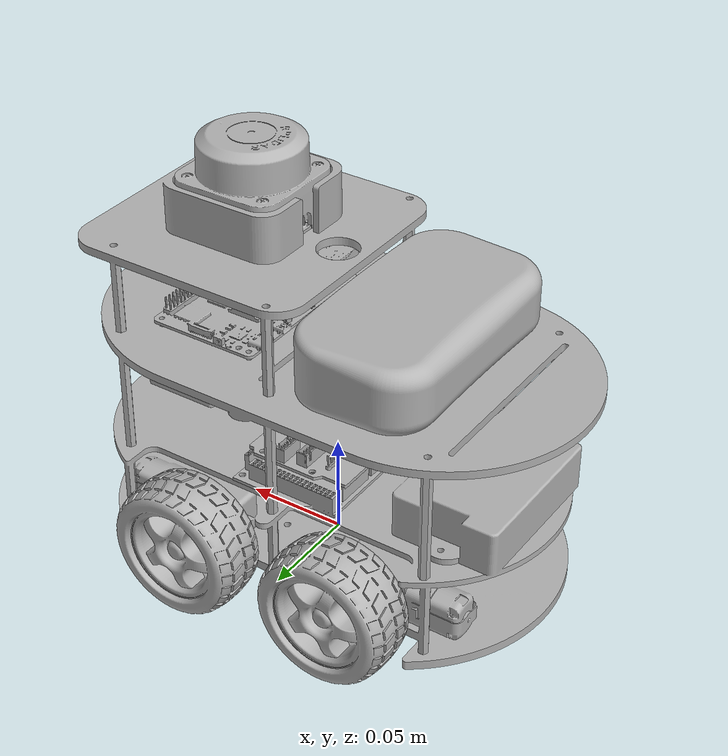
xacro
<?xml version="1.0" ?>
<robot name="navexbot" xmlns:xacro="http://www.ros.org/wiki/xacro">

<xacro:include filename="$(find navexbot_description)/urdf/materials.xacro" />
<xacro:include filename="$(find navexbot_description)/urdf/navexbot.trans" />
<xacro:include filename="$(find navexbot_description)/urdf/navexbot.gazebo" />
<link name="base_link">
  <inertial>
    <origin xyz="-0.009254800794680978 0.00030186356552978536 0.07136287250840642" rpy="0 0 0"/>
    <mass value="0.6870543151787526"/>
    <inertia ixx="0.002614" iyy="0.004939" izz="0.003796" ixy="3e-06" iyz="6e-06" ixz="-0.000506"/>
  </inertial>
  <visual>
    <origin xyz="0 0 0" rpy="0 0 0"/>
    <geometry>
      <mesh filename="file://$(find navexbot_description)/meshes/base_link.stl" scale="0.001 0.001 0.001"/>
    </geometry>
    <material name="silver"/>
  </visual>
  <collision>
    <origin xyz="0 0 0" rpy="0 0 0"/>
    <geometry>
      <mesh filename="file://$(find navexbot_description)/meshes/base_link.stl" scale="0.001 0.001 0.001"/>
    </geometry>
  </collision>
</link>

<link name="Dead_Plate_1">
  <inertial>
    <origin xyz="-0.015249901865530185 0.01003722825181954 0.0012500000000014513" rpy="0 0 0"/>
    <mass value="0.006000809309404922"/>
    <inertia ixx="1e-06" iyy="1e-06" izz="1e-06" ixy="0.0" iyz="0.0" ixz="-0.0"/>
  </inertial>
  <visual>
    <origin xyz="-0.101915 0.017411 -0.048908" rpy="0 0 0"/>
    <geometry>
      <mesh filename="file://$(find navexbot_description)/meshes/Dead_Plate_1.stl" scale="0.001 0.001 0.001"/>
    </geometry>
    <material name="silver"/>
  </visual>
  <collision>
    <origin xyz="-0.101915 0.017411 -0.048908" rpy="0 0 0"/>
    <geometry>
      <mesh filename="file://$(find navexbot_description)/meshes/Dead_Plate_1.stl" scale="0.001 0.001 0.001"/>
    </geometry>
  </collision>
</link>

<link name="Servo_1">
  <inertial>
    <origin xyz="-0.01419207764726356 -3.2856846282885294e-07 -0.0038831763099285363" rpy="0 0 0"/>
    <mass value="0.009861404357094055"/>
    <inertia ixx="1e-06" iyy="1e-06" izz="1e-06" ixy="-0.0" iyz="0.0" ixz="0.0"/>
  </inertial>
  <visual>
    <origin xyz="-0.100215 -0.001689 -0.051408" rpy="0 0 0"/>
    <geometry>
      <mesh filename="file://$(find navexbot_description)/meshes/Servo_1.stl" scale="0.001 0.001 0.001"/>
    </geometry>
    <material name="silver"/>
  </visual>
  <collision>
    <origin xyz="-0.100215 -0.001689 -0.051408" rpy="0 0 0"/>
    <geometry>
      <mesh filename="file://$(find navexbot_description)/meshes/Servo_1.stl" scale="0.001 0.001 0.001"/>
    </geometry>
  </collision>
</link>

<link name="Sensor_Mount_Bracket_1">
  <inertial>
    <origin xyz="0.0048744154488705865 -3.285684765947511e-07 0.015150516120221058" rpy="0 0 0"/>
    <mass value="0.006020344936903655"/>
    <inertia ixx="2e-06" iyy="1e-06" izz="1e-06" ixy="-0.0" iyz="0.0" ixz="-0.0"/>
  </inertial>
  <visual>
    <origin xyz="-0.08059 -0.001689 -0.065018" rpy="0 0 0"/>
    <geometry>
      <mesh filename="file://$(find navexbot_description)/meshes/Sensor_Mount_Bracket_1.stl" scale="0.001 0.001 0.001"/>
    </geometry>
    <material name="silver"/>
  </visual>
  <collision>
    <origin xyz="-0.08059 -0.001689 -0.065018" rpy="0 0 0"/>
    <geometry>
      <mesh filename="file://$(find navexbot_description)/meshes/Sensor_Mount_Bracket_1.stl" scale="0.001 0.001 0.001"/>
    </geometry>
  </collision>
</link>

<link name="Ultrasonic_Sensor_1">
  <inertial>
    <origin xyz="0.004740381707849045 -0.020350330982211375 -0.008123162994376487" rpy="0 0 0"/>
    <mass value="0.011000008480470561"/>
    <inertia ixx="2e-06" iyy="0.0" izz="2e-06" ixy="-0.0" iyz="-0.0" ixz="-0.0"/>
  </inertial>
  <visual>
    <origin xyz="-0.08959 -0.022039 -0.094368" rpy="0 0 0"/>
    <geometry>
      <mesh filename="file://$(find navexbot_description)/meshes/Ultrasonic_Sensor_1.stl" scale="0.001 0.001 0.001"/>
    </geometry>
    <material name="silver"/>
  </visual>
  <collision>
    <origin xyz="-0.08959 -0.022039 -0.094368" rpy="0 0 0"/>
    <geometry>
      <mesh filename="file://$(find navexbot_description)/meshes/Ultrasonic_Sensor_1.stl" scale="0.001 0.001 0.001"/>
    </geometry>
  </collision>
</link>

<link name="Power_Bank_v1_1">
  <inertial>
    <origin xyz="0.3969137120101962 -0.26660239809159086 -0.5245509872358798" rpy="0 0 0"/>
    <mass value="0.5000878365425062"/>
    <inertia ixx="0.000613" iyy="0.000213" izz="0.000743" ixy="0.0" iyz="0.0" ixz="0.0"/>
  </inertial>
  <visual>
    <origin xyz="0.44 -0.266614 -0.653459" rpy="0 0 0"/>
    <geometry>
      <mesh filename="file://$(find navexbot_description)/meshes/Power_Bank_v1_1.stl" scale="0.001 0.001 0.001"/>
    </geometry>
    <material name="silver"/>
  </visual>
  <collision>
    <origin xyz="0.44 -0.266614 -0.653459" rpy="0 0 0"/>
    <geometry>
      <mesh filename="file://$(find navexbot_description)/meshes/Power_Bank_v1_1.stl" scale="0.001 0.001 0.001"/>
    </geometry>
  </collision>
</link>

<link name="RASPBERRY_PI_5_1_v1_1">
  <inertial>
    <origin xyz="-0.024667496420228745 -0.05471353923003691 0.0053205519092848486" rpy="0 0 0"/>
    <mass value="0.07999938290722161"/>
    <inertia ixx="5.3e-05" iyy="2.3e-05" izz="7.2e-05" ixy="-1e-06" iyz="6e-06" ixz="-0.0"/>
  </inertial>
  <visual>
    <origin xyz="-0.069576 -0.039064 -0.112908" rpy="0 0 0"/>
    <geometry>
      <mesh filename="file://$(find navexbot_description)/meshes/RASPBERRY_PI_5_1_v1_1.stl" scale="0.001 0.001 0.001"/>
    </geometry>
    <material name="silver"/>
  </visual>
  <collision>
    <origin xyz="-0.069576 -0.039064 -0.112908" rpy="0 0 0"/>
    <geometry>
      <mesh filename="file://$(find navexbot_description)/meshes/RASPBERRY_PI_5_1_v1_1.stl" scale="0.001 0.001 0.001"/>
    </geometry>
  </collision>
</link>

<link name="Line_Tracking_Module_1">
  <inertial>
    <origin xyz="0.5540313035972204 -0.42631351135466095 -0.5444658120038782" rpy="0 0 0"/>
    <mass value="0.011999979009967758"/>
    <inertia ixx="2e-06" iyy="1e-06" izz="3e-06" ixy="-0.0" iyz="0.0" ixz="0.0"/>
  </inertial>
  <visual>
    <origin xyz="0.460696 -0.427264 -0.542551" rpy="0 0 0"/>
    <geometry>
      <mesh filename="file://$(find navexbot_description)/meshes/Line_Tracking_Module_1.stl" scale="0.001 0.001 0.001"/>
    </geometry>
    <material name="silver"/>
  </visual>
  <collision>
    <origin xyz="0.460696 -0.427264 -0.542551" rpy="0 0 0"/>
    <geometry>
      <mesh filename="file://$(find navexbot_description)/meshes/Line_Tracking_Module_1.stl" scale="0.001 0.001 0.001"/>
    </geometry>
  </collision>
</link>

<link name="Arduino_Mega_v1_1">
  <inertial>
    <origin xyz="-0.024846623231800355 0.029164935620271216 0.0028012635578156322" rpy="0 0 0"/>
    <mass value="0.03699959187591492"/>
    <inertia ixx="4.2e-05" iyy="1e-05" izz="5.1e-05" ixy="-1e-06" iyz="1e-06" ixz="0.0"/>
  </inertial>
  <visual>
    <origin xyz="-0.021607 0.036831 -0.048908" rpy="0 0 0"/>
    <geometry>
      <mesh filename="file://$(find navexbot_description)/meshes/Arduino_Mega_v1_1.stl" scale="0.001 0.001 0.001"/>
    </geometry>
    <material name="silver"/>
  </visual>
  <collision>
    <origin xyz="-0.021607 0.036831 -0.048908" rpy="0 0 0"/>
    <geometry>
      <mesh filename="file://$(find navexbot_description)/meshes/Arduino_Mega_v1_1.stl" scale="0.001 0.001 0.001"/>
    </geometry>
  </collision>
</link>

<link name="Expansion_Board_1">
  <inertial>
    <origin xyz="-0.08726576052727084 0.08646332521308203 -0.0034230357875419254" rpy="0 0 0"/>
    <mass value="0.01901859698907641"/>
    <inertia ixx="6e-06" iyy="5e-06" izz="1e-05" ixy="0.0" iyz="0.0" ixz="-0.0"/>
  </inertial>
  <visual>
    <origin xyz="-0.083115 0.078424 -0.065747" rpy="0 0 0"/>
    <geometry>
      <mesh filename="file://$(find navexbot_description)/meshes/Expansion_Board_1.stl" scale="0.001 0.001 0.001"/>
    </geometry>
    <material name="silver"/>
  </visual>
  <collision>
    <origin xyz="-0.083115 0.078424 -0.065747" rpy="0 0 0"/>
    <geometry>
      <mesh filename="file://$(find navexbot_description)/meshes/Expansion_Board_1.stl" scale="0.001 0.001 0.001"/>
    </geometry>
  </collision>
</link>

<link name="wheel_1_1">
  <inertial>
    <origin xyz="0.4327751903063669 -0.4281664221543372 -0.5405508438975558" rpy="0 0 0"/>
    <mass value="0.037002404972170014"/>
    <inertia ixx="1.5e-05" iyy="2.5e-05" izz="1.5e-05" ixy="-0.0" iyz="-0.0" ixz="0.0"/>
  </inertial>
  <visual>
    <origin xyz="0.393843 -0.36047 -0.558301" rpy="0 0 0"/>
    <geometry>
      <mesh filename="file://$(find navexbot_description)/meshes/wheel_1_1.stl" scale="0.001 0.001 0.001"/>
    </geometry>
    <material name="silver"/>
  </visual>
  <collision>
    <origin xyz="0.393843 -0.36047 -0.558301" rpy="0 0 0"/>
    <geometry>
      <mesh filename="file://$(find navexbot_description)/meshes/wheel_1_1.stl" scale="0.001 0.001 0.001"/>
    </geometry>
  </collision>
</link>

<link name="wheel_4_1">
  <inertial>
    <origin xyz="0.5258811943895968 -0.2918523043337162 -0.5405508379440966" rpy="0 0 0"/>
    <mass value="0.03700242493307289"/>
    <inertia ixx="1.5e-05" iyy="2.5e-05" izz="1.5e-05" ixy="0.0" iyz="-0.0" ixz="0.0"/>
  </inertial>
  <visual>
    <origin xyz="0.486949 -0.36047 -0.558301" rpy="0 0 0"/>
    <geometry>
      <mesh filename="file://$(find navexbot_description)/meshes/wheel_4_1.stl" scale="0.001 0.001 0.001"/>
    </geometry>
    <material name="silver"/>
  </visual>
  <collision>
    <origin xyz="0.486949 -0.36047 -0.558301" rpy="0 0 0"/>
    <geometry>
      <mesh filename="file://$(find navexbot_description)/meshes/wheel_4_1.stl" scale="0.001 0.001 0.001"/>
    </geometry>
  </collision>
</link>

<link name="wheel_3_1">
  <inertial>
    <origin xyz="0.44394981714587184 -0.2099212285643192 -0.5405509961025838" rpy="0 0 0"/>
    <mass value="0.03700242493307289"/>
    <inertia ixx="1.5e-05" iyy="2.5e-05" izz="1.5e-05" ixy="0.0" iyz="-0.0" ixz="0.0"/>
  </inertial>
  <visual>
    <origin xyz="0.486949 -0.278539 -0.558301" rpy="0 0 0"/>
    <geometry>
      <mesh filename="file://$(find navexbot_description)/meshes/wheel_3_1.stl" scale="0.001 0.001 0.001"/>
    </geometry>
    <material name="silver"/>
  </visual>
  <collision>
    <origin xyz="0.486949 -0.278539 -0.558301" rpy="0 0 0"/>
    <geometry>
      <mesh filename="file://$(find navexbot_description)/meshes/wheel_3_1.stl" scale="0.001 0.001 0.001"/>
    </geometry>
  </collision>
</link>

<link name="wheel_2_1">
  <inertial>
    <origin xyz="0.35084381306264295 -0.34623549792373326 -0.5405510020560437" rpy="0 0 0"/>
    <mass value="0.037002404972170014"/>
    <inertia ixx="1.5e-05" iyy="2.5e-05" izz="1.5e-05" ixy="-0.0" iyz="-0.0" ixz="0.0"/>
  </inertial>
  <visual>
    <origin xyz="0.393843 -0.278539 -0.558301" rpy="0 0 0"/>
    <geometry>
      <mesh filename="file://$(find navexbot_description)/meshes/wheel_2_1.stl" scale="0.001 0.001 0.001"/>
    </geometry>
    <material name="silver"/>
  </visual>
  <collision>
    <origin xyz="0.393843 -0.278539 -0.558301" rpy="0 0 0"/>
    <geometry>
      <mesh filename="file://$(find navexbot_description)/meshes/wheel_2_1.stl" scale="0.001 0.001 0.001"/>
    </geometry>
  </collision>
</link>

<link name="C1M1_appearance_V2_20230926.3d_model_v2_1">
  <inertial>
    <origin xyz="8.370960599702465e-05 -9.423957307488382e-05 0.013994531625658668" rpy="0 0 0"/>
    <mass value="0.1179926993495319"/>
    <inertia ixx="5.2e-05" iyy="5.2e-05" izz="7.3e-05" ixy="-0.0" iyz="-0.0" ixz="0.0"/>
  </inertial>
  <visual>
    <origin xyz="-0.045076 -6.4e-05 -0.156908" rpy="0 0 0"/>
    <geometry>
      <mesh filename="file://$(find navexbot_description)/meshes/C1M1_appearance_V2_20230926.3d_model_v2_1.stl" scale="0.001 0.001 0.001"/>
    </geometry>
    <material name="silver"/>
  </visual>
  <collision>
    <origin xyz="-0.045076 -6.4e-05 -0.156908" rpy="0 0 0"/>
    <geometry>
      <mesh filename="file://$(find navexbot_description)/meshes/C1M1_appearance_V2_20230926.3d_model_v2_1.stl" scale="0.001 0.001 0.001"/>
    </geometry>
  </collision>
</link>

<joint name="Rigid 1" type="fixed">
  <origin xyz="0.101915 -0.017411 0.048908" rpy="0 0 0"/>
  <parent link="base_link"/>
  <child link="Dead_Plate_1"/>
</joint>

<joint name="Rigid 2" type="fixed">
  <origin xyz="-0.0017 0.0191 0.0025" rpy="0 0 0"/>
  <parent link="Dead_Plate_1"/>
  <child link="Servo_1"/>
</joint>

<joint name="Revolute 3" type="continuous">
  <origin xyz="-0.019625 0.0 0.01361" rpy="0 0 0"/>
  <parent link="Servo_1"/>
  <child link="Sensor_Mount_Bracket_1"/>
  <axis xyz="0.0 0.0 1.0"/>
</joint>

<joint name="Rigid 4" type="fixed">
  <origin xyz="0.009 0.02035 0.02935" rpy="0 0 0"/>
  <parent link="Sensor_Mount_Bracket_1"/>
  <child link="Ultrasonic_Sensor_1"/>
</joint>

<joint name="Rigid 6" type="fixed">
  <origin xyz="-0.44 0.266614 0.653459" rpy="0 0 0"/>
  <parent link="base_link"/>
  <child link="Power_Bank_v1_1"/>
</joint>

<joint name="Rigid 7" type="fixed">
  <origin xyz="0.069576 0.039064 0.112908" rpy="0 0 0"/>
  <parent link="base_link"/>
  <child link="RASPBERRY_PI_5_1_v1_1"/>
</joint>

<joint name="Rigid 8" type="fixed">
  <origin xyz="-0.460696 0.427264 0.542551" rpy="0 0 0"/>
  <parent link="base_link"/>
  <child link="Line_Tracking_Module_1"/>
</joint>

<joint name="Rigid 9" type="fixed">
  <origin xyz="0.021607 -0.036831 0.048908" rpy="0 0 0"/>
  <parent link="base_link"/>
  <child link="Arduino_Mega_v1_1"/>
</joint>

<joint name="Rigid 10" type="fixed">
  <origin xyz="0.061508 -0.041593 0.016839" rpy="0 0 0"/>
  <parent link="Arduino_Mega_v1_1"/>
  <child link="Expansion_Board_1"/>
</joint>

<joint name="Revolute 11" type="continuous">
  <origin xyz="-0.393843 0.36047 0.558301" rpy="0 0 0"/>
  <parent link="base_link"/>
  <child link="wheel_1_1"/>
  <axis xyz="0.0 1.0 0.0"/>
</joint>

<joint name="Revolute 12" type="continuous">
  <origin xyz="-0.486949 0.36047 0.558301" rpy="0 0 0"/>
  <parent link="base_link"/>
  <child link="wheel_4_1"/>
  <axis xyz="-0.0 1.0 0.0"/>
</joint>

<joint name="Revolute 13" type="continuous">
  <origin xyz="-0.486949 0.278539 0.558301" rpy="0 0 0"/>
  <parent link="base_link"/>
  <child link="wheel_3_1"/>
  <axis xyz="-0.0 -1.0 -0.0"/>
</joint>

<joint name="Revolute 14" type="continuous">
  <origin xyz="-0.393843 0.278539 0.558301" rpy="0 0 0"/>
  <parent link="base_link"/>
  <child link="wheel_2_1"/>
  <axis xyz="0.0 -1.0 -0.0"/>
</joint>

<joint name="Rigid 15" type="fixed">
  <origin xyz="0.045076 6.4e-05 0.156908" rpy="0 0 0"/>
  <parent link="base_link"/>
  <child link="C1M1_appearance_V2_20230926.3d_model_v2_1"/>
</joint>

</robot>

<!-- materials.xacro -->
<robot name="navexbot" xmlns:xacro="http://www.ros.org/wiki/xacro" >

<material name="silver">
  <color rgba="0.700 0.700 0.700 1.000"/>
</material>

<material name="black">
  <color rgba="0.000 0.000 0.000 1.000"/>
</material>

<material name="light black">
  <color rgba="0.400 0.400 0.400 1.000"/>
</material>

<material name="blue">
  <color rgba="0.043 0.651 0.875 1.000"/>
</material>

<material name="yellow">
  <color rgba="1.000 1.000 0.000 1.000"/>
</material>

<material name="sage">
  <color rgba="0.518 0.600 0.310 1.000"/>
</material>

<material name="teal">
  <color rgba="0.000 0.500 0.500 1.000"/>
</material>

<material name="green">
  <color rgba="0.388 0.639 0.380 1.000"/>
</material>

  <material name="brown">
    <color rgba="0.8706 0.8118 0.7647 1.0"/>
  </material>

</robot>

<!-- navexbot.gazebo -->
<robot name="navexbot" xmlns:xacro="http://www.ros.org/wiki/xacro" >

<xacro:property name="body_color" value="Gazebo/Silver" />

<gazebo>
  <plugin name="control" filename="libgazebo_ros_control.so"/>
</gazebo>
<gazebo reference="base_link">
  <material>${body_color}</material>
  <mu1>0.2</mu1>
  <mu2>0.2</mu2>
  <self_collide>true</self_collide>
  <gravity>true</gravity>
</gazebo>

<gazebo reference="Dead_Plate_1">
  <material>${body_color}</material>
  <mu1>0.2</mu1>
  <mu2>0.2</mu2>
  <self_collide>true</self_collide>
</gazebo>

<gazebo reference="Servo_1">
  <material>${body_color}</material>
  <mu1>0.2</mu1>
  <mu2>0.2</mu2>
  <self_collide>true</self_collide>
</gazebo>

<gazebo reference="Sensor_Mount_Bracket_1">
  <material>${body_color}</material>
  <mu1>0.2</mu1>
  <mu2>0.2</mu2>
  <self_collide>true</self_collide>
</gazebo>

<gazebo reference="Ultrasonic_Sensor_1">
  <material>${body_color}</material>
  <mu1>0.2</mu1>
  <mu2>0.2</mu2>
  <self_collide>true</self_collide>
</gazebo>

<gazebo reference="Power_Bank_v1_1">
  <material>${body_color}</material>
  <mu1>0.2</mu1>
  <mu2>0.2</mu2>
  <self_collide>true</self_collide>
</gazebo>

<gazebo reference="RASPBERRY_PI_5_1_v1_1">
  <material>${body_color}</material>
  <mu1>0.2</mu1>
  <mu2>0.2</mu2>
  <self_collide>true</self_collide>
</gazebo>

<gazebo reference="Line_Tracking_Module_1">
  <material>${body_color}</material>
  <mu1>0.2</mu1>
  <mu2>0.2</mu2>
  <self_collide>true</self_collide>
</gazebo>

<gazebo reference="Arduino_Mega_v1_1">
  <material>${body_color}</material>
  <mu1>0.2</mu1>
  <mu2>0.2</mu2>
  <self_collide>true</self_collide>
</gazebo>

<gazebo reference="Expansion_Board_1">
  <material>${body_color}</material>
  <mu1>0.2</mu1>
  <mu2>0.2</mu2>
  <self_collide>true</self_collide>
</gazebo>

<gazebo reference="wheel_1_1">
  <material>${body_color}</material>
  <mu1>0.2</mu1>
  <mu2>0.2</mu2>
  <self_collide>true</self_collide>
</gazebo>

<gazebo reference="wheel_4_1">
  <material>${body_color}</material>
  <mu1>0.2</mu1>
  <mu2>0.2</mu2>
  <self_collide>true</self_collide>
</gazebo>

<gazebo reference="wheel_3_1">
  <material>${body_color}</material>
  <mu1>0.2</mu1>
  <mu2>0.2</mu2>
  <self_collide>true</self_collide>
</gazebo>

<gazebo reference="wheel_2_1">
  <material>${body_color}</material>
  <mu1>0.2</mu1>
  <mu2>0.2</mu2>
  <self_collide>true</self_collide>
</gazebo>

<gazebo reference="C1M1_appearance_V2_20230926.3d_model_v2_1">
  <material>${body_color}</material>
  <mu1>0.2</mu1>
  <mu2>0.2</mu2>
  <self_collide>true</self_collide>
</gazebo>

</robot>
